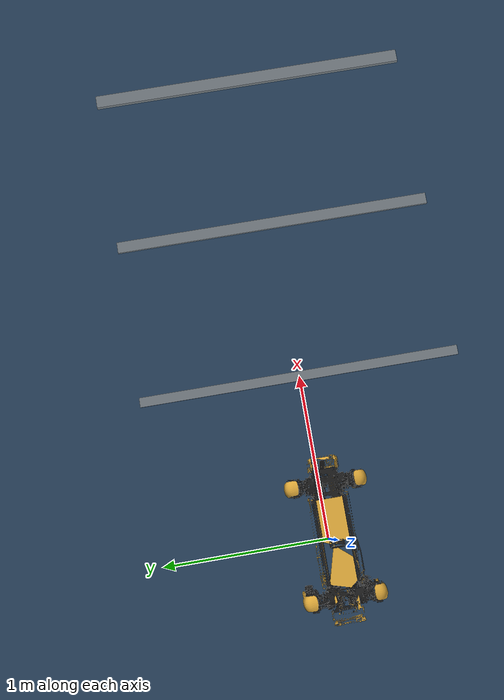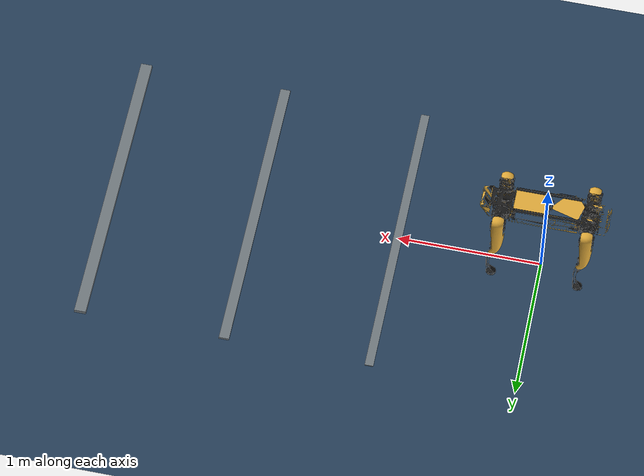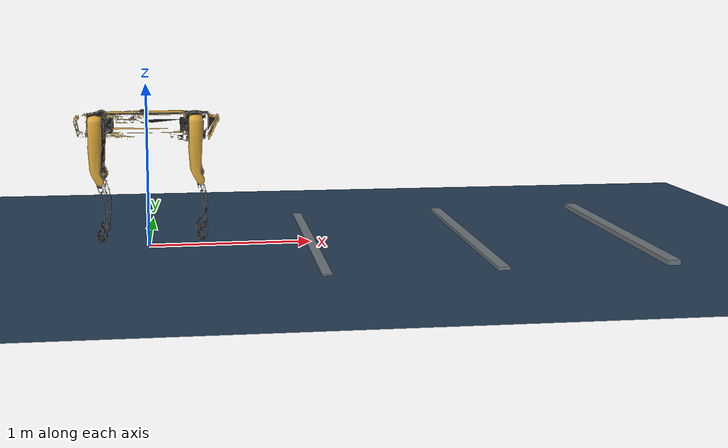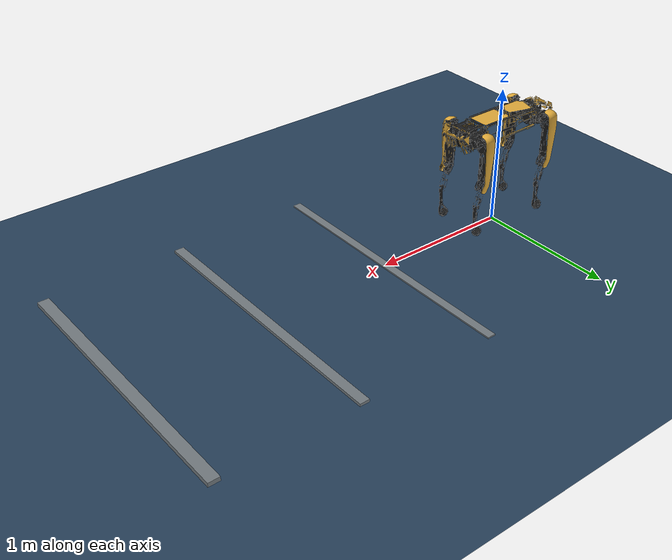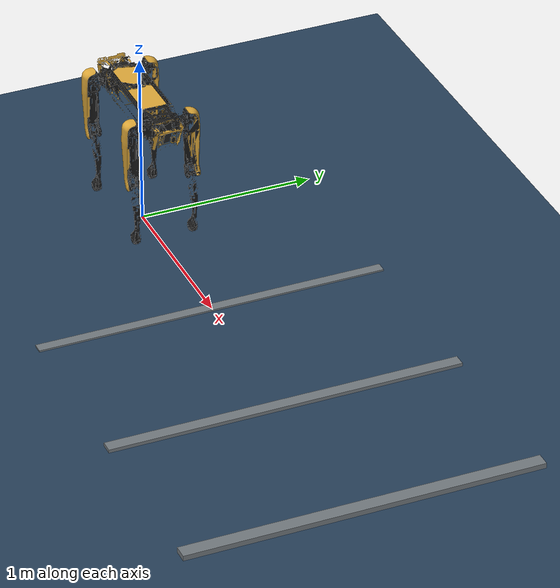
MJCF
<mujoco model="spot feetonly rough terrain policy">
  <include file="spot_mjx_feetonly.xml"/>

  <statistic center="0 0 0.1" extent="0.8" meansize="0.04"/>

  <visual>
    <headlight diffuse=".8 .8 .8" ambient=".2 .2 .2" specular="1 1 1"/>
    <global azimuth="120" elevation="-20" offwidth="1280" offheight="960"/>
  </visual>

  <asset>
    <texture type="skybox" builtin="gradient" rgb1=".3 .5 .7" rgb2="0 0 0" width="32" height="512"/>
    <texture type="2d" name="groundplane" builtin="checker" width="300" height="300"
      rgb1=".1 .2 .3" rgb2=".2 .3 .4"/>
    <material name="groundplane" texture="groundplane" texuniform="true" texrepeat="5 5" reflectance="0.2"/>
    <material name="stepmat" rgba="0.45 0.48 0.50 1"/>
  </asset>

  <worldbody>
    <geom name="floor" size="0 0 0.01" type="plane" material="groundplane" contype="1" conaffinity="0"
      priority="1" friction="0.6" condim="3"/>
    <geom name="curb_1" type="box" pos="1.00 0 0.0050" size="0.030 1.00 0.0050" material="stepmat"
      contype="1" conaffinity="1" priority="2" friction="0.8" condim="3"/>
    <geom name="curb_2" type="box" pos="2.00 0 0.0100" size="0.035 1.00 0.0100" material="stepmat"
      contype="1" conaffinity="1" priority="2" friction="0.8" condim="3"/>
    <geom name="curb_3" type="box" pos="3.00 0 0.0150" size="0.040 1.00 0.0150" material="stepmat"
      contype="1" conaffinity="1" priority="2" friction="0.8" condim="3"/>
  </worldbody>

  <keyframe>
    <key name="home"
      qpos="0 0 0.46  1 0 0 0  0 1.04 -1.8  0 1.04 -1.8  0 1.04 -1.8  0 1.04 -1.8"
      ctrl="0 1.04 -1.8  0 1.04 -1.8  0 1.04 -1.8  0 1.04 -1.8"/>
  </keyframe>
</mujoco>

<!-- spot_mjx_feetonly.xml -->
<mujoco model="spot">
  <compiler angle="radian" meshdir="assets" autolimits="true"/>

  <option iterations="1" ls_iterations="5" timestep="0.004">
    <flag eulerdamp="disable"/>
  </option>

  <asset>
    <material name="BlackAbs" rgba="0.1 0.1 0.1 1"/>
    <material name="wrap" rgba="0.878431 0.666666 0.227450 1"/>

    <mesh file="body_0.obj"/>
    <mesh file="body_1.obj"/>
    <mesh file="front_left_hip.obj"/>
    <mesh file="front_left_upper_leg_0.obj"/>
    <mesh file="front_left_upper_leg_1.obj"/>
    <mesh file="front_left_lower_leg.obj"/>
    <mesh file="front_right_hip.obj"/>
    <mesh file="front_right_upper_leg_0.obj"/>
    <mesh file="front_right_upper_leg_1.obj"/>
    <mesh file="front_right_lower_leg.obj"/>
    <mesh file="rear_left_hip.obj"/>
    <mesh file="rear_left_upper_leg_0.obj"/>
    <mesh file="rear_left_upper_leg_1.obj"/>
    <mesh file="rear_left_lower_leg.obj"/>
    <mesh file="rear_right_hip.obj"/>
    <mesh file="rear_right_upper_leg_0.obj"/>
    <mesh file="rear_right_upper_leg_1.obj"/>
    <mesh file="rear_right_lower_leg.obj"/>
  </asset>

  <default>
    <default class="spot">
      <!-- This globaly disables all collisions. -->
      <geom condim="1" contype="0" conaffinity="0"/>
      <!-- damping/kp baked to the env's runtime PD overrides (base.py: dof_damping=Kd=1,
           actuator_gainprm=Kp=300) so the bundled model matches the training model byte-for-byte. -->
      <joint actuatorfrcrange="-1000 1000" damping="1" armature="0.1" frictionloss="0.2"/>
      <position kp="300" kv="20" inheritrange="1"/>
      <default class="visual">
        <geom group="2" type="mesh"/>
      </default>
      <default class="collision">
        <geom group="3"/>
        <default class="foot">
          <geom type="sphere" size="0.036" pos="0 0 -0.3365" solimp="0.9 0.95 0.036" contype="0" conaffinity="1"/>
          <site size="0.036" group="5" pos="0 0 -0.3365"/>
        </default>
      </default>
    </default>
  </default>

  <worldbody>
    <light name="spotlight" mode="targetbodycom" target="body" pos="3 0 4"/>
    <body name="body" childclass="spot" pos="0 0 .75">
      <camera name="track" pos="0.846 -1.3 0.316" xyaxes="0.866 0.500 0.000 -0.171 0.296 0.940" mode="trackcom"/>
      <camera name="top" pos="-1 0 1" xyaxes="0 -1 0 0.7 0 0.7" mode="trackcom"/>
      <camera name="side" pos="0 -1.2 .3" xyaxes="1 0 0 0 1 2" mode="trackcom"/>
      <camera name="back" pos="-1.2 0 .3" xyaxes="0 -1 0 1 0 2" mode="trackcom"/>
      <freejoint name="freejoint"/>
      <inertial pos="0.0063944 -9.81216e-05 0.000911379" mass="32.86" diaginertia="0.13144 0.13144 0.13144"/>
      <geom mesh="body_0" material="BlackAbs" class="visual"/>
      <geom mesh="body_1" material="wrap" class="visual"/>
      <site name="imu"/>
      <body name="fl_hip" pos="0.29785 0.055 0">
        <inertial pos="-0.00537435 0.0128418 9.87523e-05" quat="1 1 -1 1" mass="1.68"
          diaginertia="0.00226544 0.00211474 0.00181296"/>
        <joint name="fl_hx" axis="1 0 0" range="-0.785398 0.785398"/>
        <geom material="BlackAbs" mesh="front_left_hip" class="visual"/>
        <body name="fl_uleg" pos="0 0.1108 0">
          <inertial pos="0.00514237 -0.00243237 -0.121009" mass="2.34" diaginertia="0.0275596 0.0273549 0.00284815"/>
          <joint name="fl_hy" axis="0 1 0" range="-0.898845 2.29511"/>
          <geom mesh="front_left_upper_leg_0" material="wrap" class="visual"/>
          <geom mesh="front_left_upper_leg_1" material="BlackAbs" class="visual"/>
          <body name="fl_lleg" pos="0.025 0 -0.32">
            <inertial pos="0.00225794 4.6076e-05 -0.180082" quat="1 0 0 1" mass="0.35"
              diaginertia="0.00405032 0.00399902 0.00014934"/>
            <joint name="fl_kn" axis="0 1 0" range="-2.7929 -0.254402"/>
            <geom material="BlackAbs" mesh="front_left_lower_leg" class="visual"/>
            <geom name="FL" class="foot"/>
            <site name="FL" class="foot"/>
          </body>
        </body>
      </body>
      <body name="fr_hip" pos="0.29785 -0.055 0">
        <inertial pos="-0.00537435 -0.0128418 -9.87523e-05" quat="1 1 -1 1" mass="1.68"
          diaginertia="0.00226544 0.00211474 0.00181296"/>
        <joint name="fr_hx" axis="1 0 0" range="-0.785398 0.785398"/>
        <geom material="BlackAbs" mesh="front_right_hip" class="visual"/>
        <body name="fr_uleg" pos="0 -0.1108 0">
          <inertial pos="0.00514237 0.00243237 -0.121009" mass="2.34" diaginertia="0.0275596 0.0273549 0.00284815"/>
          <joint name="fr_hy" axis="0 1 0" range="-0.898845 2.24363"/>
          <geom mesh="front_right_upper_leg_0" material="wrap" class="visual"/>
          <geom mesh="front_right_upper_leg_1" material="BlackAbs" class="visual"/>
          <body name="fr_lleg" pos="0.025 0 -0.32">
            <inertial pos="0.00225794 4.6076e-05 -0.180082" quat="1 0 0 1" mass="0.35"
              diaginertia="0.00405032 0.00399902 0.00014934"/>
            <joint name="fr_kn" axis="0 1 0" range="-2.7929 -0.255648"/>
            <geom material="BlackAbs" mesh="front_right_lower_leg" class="visual"/>
            <geom name="FR" class="foot"/>
            <site name="FR" class="foot"/>
          </body>
        </body>
      </body>
      <body name="hl_hip" pos="-0.29785 0.055 0">
        <inertial pos="0.00537435 0.0128418 -9.87523e-05" quat="1 1 -1 1" mass="1.68"
          diaginertia="0.00226544 0.00211474 0.00181296"/>
        <joint name="hl_hx" axis="1 0 0" range="-0.785398 0.785398"/>
        <geom material="BlackAbs" mesh="rear_left_hip" class="visual"/>
        <body name="hl_uleg" pos="0 0.1108 0">
          <inertial pos="0.00514237 -0.00243237 -0.121009" mass="2.34" diaginertia="0.0275596 0.0273549 0.00284815"/>
          <joint name="hl_hy" axis="0 1 0" range="-0.898845 2.29511"/>
          <geom mesh="rear_left_upper_leg_0" material="wrap" class="visual"/>
          <geom mesh="rear_left_upper_leg_1" material="BlackAbs" class="visual"/>
          <body name="hl_lleg" pos="0.025 0 -0.32">
            <inertial pos="0.00225794 4.6076e-05 -0.180082" quat="1 0 0 1" mass="0.35"
              diaginertia="0.00405032 0.00399902 0.00014934"/>
            <joint name="hl_kn" axis="0 1 0" range="-2.7929 -0.247067"/>
            <geom material="BlackAbs" mesh="rear_left_lower_leg" class="visual"/>
            <geom name="HL" class="foot"/>
            <site name="HL" class="foot"/>
          </body>
        </body>
      </body>
      <body name="hr_hip" pos="-0.29785 -0.055 0">
        <inertial pos="0.00537435 -0.0128418 9.87523e-05" quat="1 1 -1 1" mass="1.68"
          diaginertia="0.00226544 0.00211474 0.00181296"/>
        <joint name="hr_hx" axis="1 0 0" range="-0.785398 0.785398"/>
        <geom material="BlackAbs" mesh="rear_right_hip" class="visual"/>
        <body name="hr_uleg" pos="0 -0.1108 0">
          <inertial pos="0.00514237 0.00243237 -0.121009" mass="2.34" diaginertia="0.0275596 0.0273549 0.00284815"/>
          <joint name="hr_hy" axis="0 1 0" range="-0.898845 2.29511"/>
          <geom mesh="rear_right_upper_leg_0" material="wrap" class="visual"/>
          <geom mesh="rear_right_upper_leg_1" material="BlackAbs" class="visual"/>
          <body name="hr_lleg" pos="0.025 0 -0.32">
            <inertial pos="0.00225794 4.6076e-05 -0.180082" quat="1 0 0 1" mass="0.35"
              diaginertia="0.00405032 0.00399902 0.00014934"/>
            <joint name="hr_kn" axis="0 1 0" range="-2.7929 -0.248282"/>
            <geom material="BlackAbs" mesh="rear_left_lower_leg" class="visual"/>
            <geom name="HR" class="foot"/>
            <site name="HR" class="foot"/>
          </body>
        </body>
      </body>
    </body>
  </worldbody>

  <contact>
    <exclude body1="body" body2="fl_uleg"/>
    <exclude body1="body" body2="fr_uleg"/>
    <exclude body1="body" body2="hl_uleg"/>
    <exclude body1="body" body2="hr_uleg"/>
  </contact>

  <actuator>
    <position class="spot" name="fl_hx" joint="fl_hx"/>
    <position class="spot" name="fl_hy" joint="fl_hy"/>
    <position class="spot" name="fl_kn" joint="fl_kn"/>
    <position class="spot" name="fr_hx" joint="fr_hx"/>
    <position class="spot" name="fr_hy" joint="fr_hy"/>
    <position class="spot" name="fr_kn" joint="fr_kn"/>
    <position class="spot" name="hl_hx" joint="hl_hx"/>
    <position class="spot" name="hl_hy" joint="hl_hy"/>
    <position class="spot" name="hl_kn" joint="hl_kn"/>
    <position class="spot" name="hr_hx" joint="hr_hx"/>
    <position class="spot" name="hr_hy" joint="hr_hy"/>
    <position class="spot" name="hr_kn" joint="hr_kn"/>
  </actuator>

  <sensor>
    <gyro site="imu" name="gyro"/>
    <velocimeter site="imu" name="local_linvel"/>
    <accelerometer site="imu" name="accelerometer"/>
    <framepos objtype="site" objname="imu" name="position"/>
    <framezaxis objtype="site" objname="imu" name="upvector"/>
    <framexaxis objtype="site" objname="imu" name="forwardvector"/>
    <framelinvel objtype="site" objname="imu" name="global_linvel"/>
    <frameangvel objtype="site" objname="imu" name="global_angvel"/>
    <framequat objtype="site" objname="imu" name="orientation"/>
    <framelinvel objtype="site" objname="FR" name="FR_global_linvel"/>
    <framelinvel objtype="site" objname="FL" name="FL_global_linvel"/>
    <framelinvel objtype="site" objname="HR" name="HR_global_linvel"/>
    <framelinvel objtype="site" objname="HL" name="HL_global_linvel"/>
    <framepos objtype="site" objname="FR" name="FR_pos" reftype="site" refname="imu"/>
    <framepos objtype="site" objname="FL" name="FL_pos" reftype="site" refname="imu"/>
    <framepos objtype="site" objname="HR" name="HR_pos" reftype="site" refname="imu"/>
    <framepos objtype="site" objname="HL" name="HL_pos" reftype="site" refname="imu"/>
  </sensor>
</mujoco>
